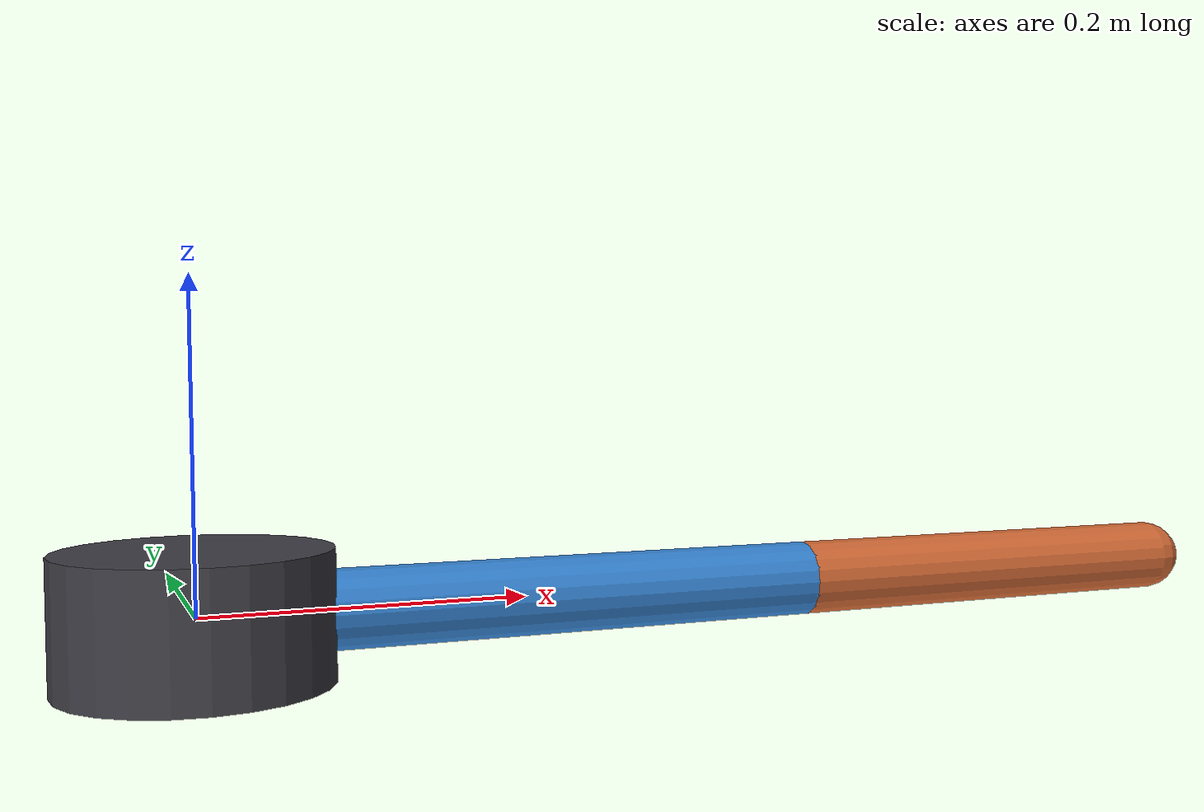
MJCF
<mujoco model="plcopen_t2a_two_link">
  <compiler angle="radian"/>
  <option timestep="0.001" integrator="implicitfast"/>

  <default>
    <joint type="hinge" axis="0 0 1" damping="0.1"
           armature="0.01" limited="true" range="-1.5 1.5"/>
    <geom type="capsule" size="0.025" density="300"
          rgba="0.2 0.5 0.8 1"/>
  </default>

  <worldbody>
    <geom name="base" type="cylinder" size="0.08 0.04"
          rgba="0.25 0.25 0.28 1"/>
    <body name="link1">
      <joint name="joint1"/>
      <geom name="link1_geom" fromto="0 0 0 0.4 0 0"/>
      <body name="link2" pos="0.4 0 0">
        <joint name="joint2"/>
        <geom name="link2_geom" fromto="0 0 0 0.3 0 0"
              rgba="0.8 0.4 0.2 1"/>
      </body>
    </body>
  </worldbody>

  <actuator>
    <position name="actuator1" joint="joint1" kp="100" kv="5"
              ctrllimited="true" ctrlrange="-1.5 1.5"/>
    <position name="actuator2" joint="joint2" kp="100" kv="5"
              ctrllimited="true" ctrlrange="-1.5 1.5"/>
  </actuator>
</mujoco>
